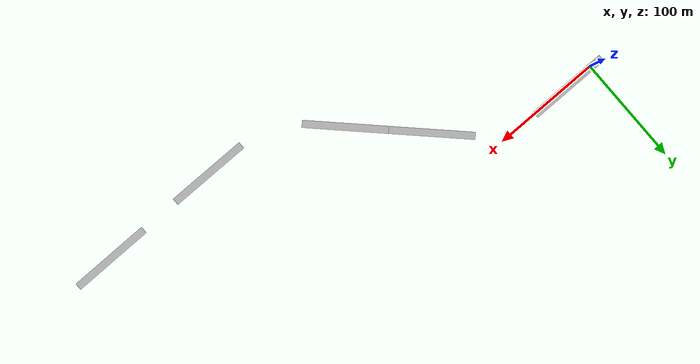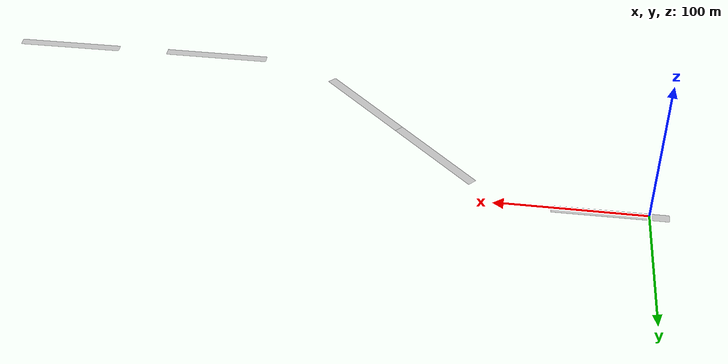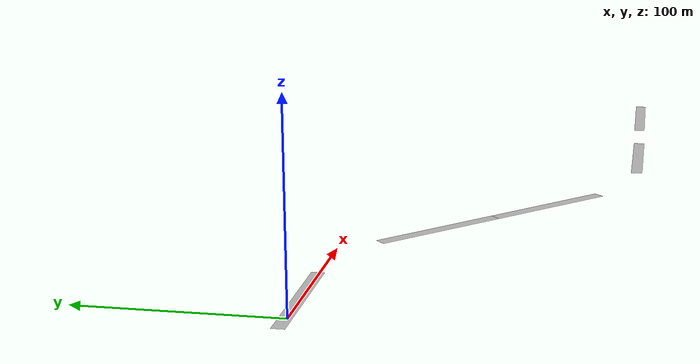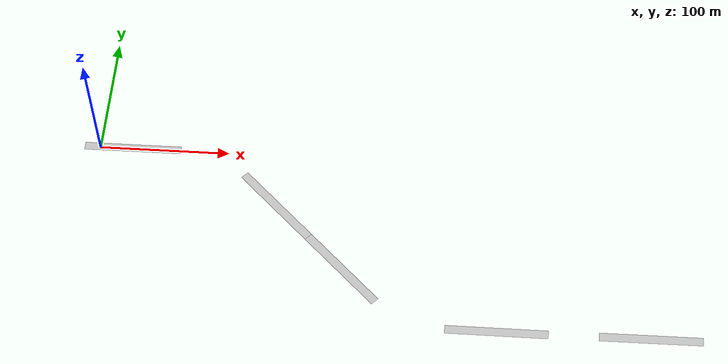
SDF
<sdf version="1.5">
 <world name="default">
  <light name="sun" type="directional">
   <pose>0 0 10 0 -0 0</pose>
   <diffuse>0.8 0.8 0.8 1</diffuse>
   <specular>0.1 0.1 0.1 1</specular>
   <attenuation>
    <range>1000</range>
    <constant>0.9</constant>
    <linear>0.01</linear>
    <quadratic>0.001</quadratic>
   </attenuation>
   <direction>-0.5 0.5 -1</direction>
  </light>
  <model name="ground_plane">
   <static>1</static>
   <link name="link">
    <pose>50 100 0 0 -0 0</pose>
    <collision name="collision">
     <geometry><plane><normal>0 0 1</normal><size>100 20</size></plane></geometry>
    </collision>
    <visual name="visual">
     <cast_shadows>0</cast_shadows>
     <geometry><plane><normal>0 0 1</normal><size>100 20</size></plane></geometry>
     <material><script><uri>__default__</uri><name>__default__</name></script></material>
    </visual>
   </link>
  </model>
  <model name="road_2_0_1">
   <pose>25 1.02 -0.05 0 -0 0</pose>
   <static>1</static>
   <link name="link">
    <collision name="collision"><geometry><box><size>75 6.54 0.0001</size></box></geometry></collision>
    <visual name="visual">
     <cast_shadows>0</cast_shadows>
     <geometry><box><size>75 6.54 0.0001</size></box></geometry>
     <material>
      <script>
       <uri>models/newstraight/materials/scripts</uri>
       <uri>models/newstraight/materials/textures</uri>
       <name>newstraight</name>
      </script>
     </material>
    </visual>
   </link>
  </model>
  <model name="road_2_0_2">
   <pose>140.495 -45.3521 -0.05 0 0 -0.78</pose>
   <static>1</static>
   <link name="link">
    <collision name="collision"><geometry><box><size>75 6.54 0.0001</size></box></geometry></collision>
    <visual name="visual">
     <cast_shadows>0</cast_shadows>
     <geometry><box><size>75 6.54 0.0001</size></box></geometry>
     <material>
      <script>
       <uri>models/newstraight/materials/scripts</uri>
       <uri>models/newstraight/materials/textures</uri>
       <name>newstraight</name>
      </script>
     </material>
    </visual>
   </link>
  </model>
  <physics name="default_physics" default="0" type="ode">
   <max_step_size>0.001</max_step_size>
   <real_time_factor>1</real_time_factor>
   <real_time_update_rate>1000</real_time_update_rate>
   <gravity>0 0 -9.8</gravity>
   <magnetic_field>6e-06 2.3e-05 -4.2e-05</magnetic_field>
  </physics>
  <scene><ambient>0.4 0.4 0.4 1</ambient><background>0.7 0.7 0.7 1</background><shadows>1</shadows></scene>
  <spherical_coordinates>
   <surface_model>EARTH_WGS84</surface_model>
   <latitude_deg>0</latitude_deg>
   <longitude_deg>0</longitude_deg>
   <elevation>0</elevation>
   <heading_deg>0</heading_deg>
  </spherical_coordinates>
  <model name="road_2_0_2_clone">
   <pose>193.77 -98.066 -0.05 0 0 -0.78</pose>
   <static>1</static>
   <link name="link">
    <collision name="collision"><geometry><box><size>75 6.54 0.0001</size></box></geometry></collision>
    <visual name="visual">
     <cast_shadows>0</cast_shadows>
     <geometry><box><size>75 6.54 0.0001</size></box></geometry>
     <material>
      <script>
       <uri>models/newstraight/materials/scripts</uri>
       <uri>models/newstraight/materials/textures</uri>
       <name>newstraight</name>
      </script>
     </material>
    </visual>
   </link>
  </model>
  <model name="road_2_0_2_clone_clone">
   <pose>420.906 -143.789 -0.05 0 -0 0.004053</pose>
   <static>1</static>
   <link name="link">
    <collision name="collision"><geometry><box><size>74.9999 6.54 0.0001</size></box></geometry></collision>
    <visual name="visual">
     <cast_shadows>0</cast_shadows>
     <geometry><box><size>74.9999 6.54 0.0001</size></box></geometry>
     <material>
      <script>
       <uri>models/newstraight/materials/scripts</uri>
       <uri>models/newstraight/materials/textures</uri>
       <name>newstraight</name>
      </script>
     </material>
    </visual>
   </link>
  </model>
  <audio><device>default</device></audio>
  <model name="road_2_0_2_clone_clone_0">
   <pose>309.524 -144.438 -0.05 0 0 -0.001554</pose>
   <static>1</static>
   <link name="link">
    <collision name="collision"><geometry><box><size>75 6.54 0.0001</size></box></geometry></collision>
    <visual name="visual">
     <cast_shadows>0</cast_shadows>
     <geometry><box><size>75 6.54 0.0001</size></box></geometry>
     <material>
      <script>
       <uri>models/newstraight/materials/scripts</uri>
       <uri>models/newstraight/materials/textures</uri>
       <name>newstraight</name>
      </script>
     </material>
    </visual>
   </link>
  </model>
 </world>
</sdf>
